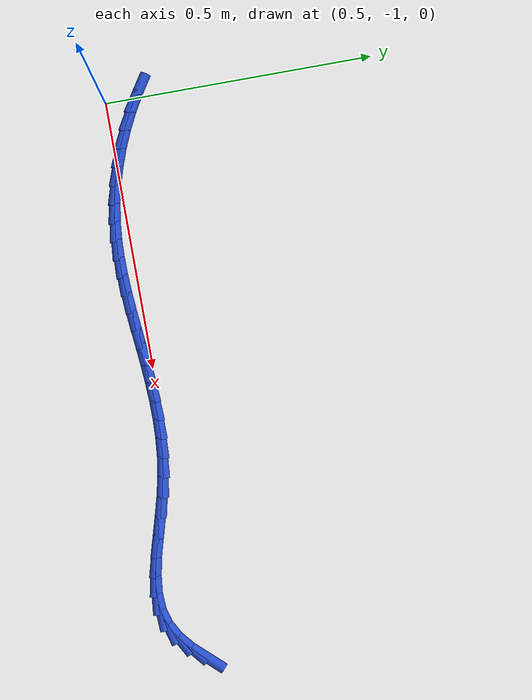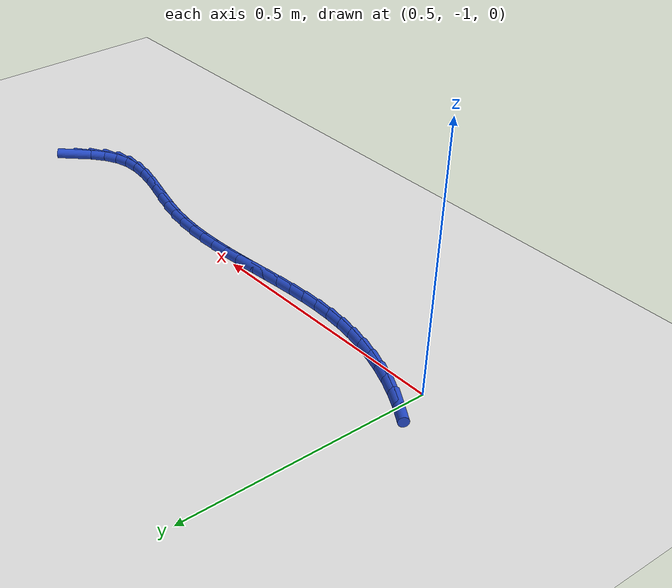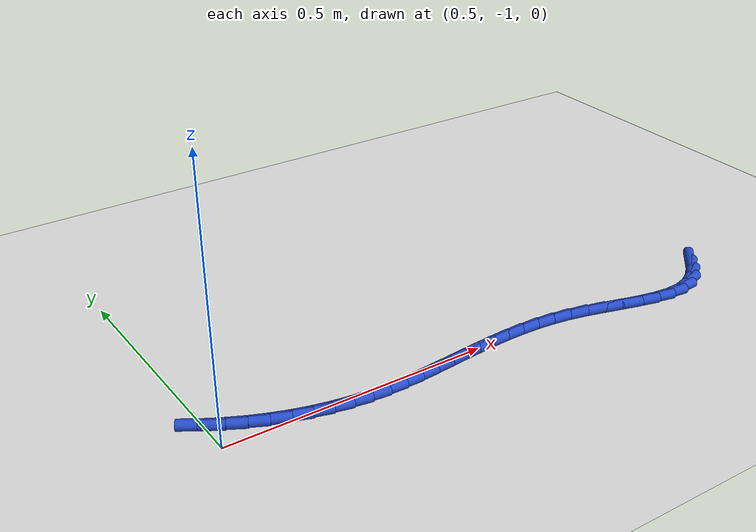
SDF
<sdf version="1.6">
 <world name="default">
  <model name="ground_plane">
   <static>1</static>
   <link name="link">
    <collision name="collision">
     <geometry><plane><normal>0 0 1</normal><size>100 100</size></plane></geometry>
     <surface><friction><ode><mu>100</mu><mu2>50</mu2></ode></friction></surface>
    </collision>
    <visual name="visual">
     <cast_shadows>0</cast_shadows>
     <geometry><plane><normal>0 0 1</normal><size>100 100</size></plane></geometry>
     <material>
      <script><uri>file://media/materials/scripts/gazebo.material</uri><name>Gazebo/WhiteGlow</name></script>
     </material>
    </visual>
   </link>
  </model>
  <model name="line">
   <link name="link_136">
    <pose>1.535851303176339 -0.9959548748062285 0.01 0 1.57 0.8305491064275679</pose>
    <collision name="collision">
     <geometry><cylinder><radius>0.01</radius><length>0.08</length></cylinder></geometry>
    </collision>
    <visual name="visual">
     <material>
      <script><name>Gazebo/Blue</name><uri>file://media/materials/scripts/gazebo.material</uri></script>
     </material>
     <geometry><cylinder><radius>0.01</radius><length>0.08</length></cylinder></geometry>
    </visual>
   </link>
   <link name="link_137">
    <pose>1.5136565148035939 -1.0202501614662336 0.01 0 1.57 0.6956574521396309</pose>
    <collision name="collision">
     <geometry><cylinder><radius>0.01</radius><length>0.08</length></cylinder></geometry>
    </collision>
    <visual name="visual">
     <material>
      <script><name>Gazebo/Blue</name><uri>file://media/materials/scripts/gazebo.material</uri></script>
     </material>
     <geometry><cylinder><radius>0.01</radius><length>0.08</length></cylinder></geometry>
    </visual>
   </link>
   <link name="link_138">
    <pose>1.489957383802396 -1.0400363768263534 0.01 0 1.57 0.5069279007569476</pose>
    <collision name="collision">
     <geometry><cylinder><radius>0.01</radius><length>0.08</length></cylinder></geometry>
    </collision>
    <visual name="visual">
     <material>
      <script><name>Gazebo/Blue</name><uri>file://media/materials/scripts/gazebo.material</uri></script>
     </material>
     <geometry><cylinder><radius>0.01</radius><length>0.08</length></cylinder></geometry>
    </visual>
   </link>
   <link name="link_139">
    <pose>1.4643148517030729 -1.05427650360706 0.01 0 1.57 0.26925715210383283</pose>
    <collision name="collision">
     <geometry><cylinder><radius>0.01</radius><length>0.08</length></cylinder></geometry>
    </collision>
    <visual name="visual">
     <material>
      <script><name>Gazebo/Blue</name><uri>file://media/materials/scripts/gazebo.material</uri></script>
     </material>
     <geometry><cylinder><radius>0.01</radius><length>0.08</length></cylinder></geometry>
    </visual>
   </link>
   <link name="link_140">
    <pose>1.4363146456041511 -1.062003399986366 0.01 0 1.57 0.04858545113335648</pose>
    <collision name="collision">
     <geometry><cylinder><radius>0.01</radius><length>0.08</length></cylinder></geometry>
    </collision>
    <visual name="visual">
     <material>
      <script><name>Gazebo/Blue</name><uri>file://media/materials/scripts/gazebo.material</uri></script>
     </material>
     <geometry><cylinder><radius>0.01</radius><length>0.08</length></cylinder></geometry>
    </visual>
   </link>
   <link name="link_141">
    <pose>1.4059782699403283 -1.063478467321233 0.01 0 1.57 -0.10697634446345039</pose>
    <collision name="collision">
     <geometry><cylinder><radius>0.01</radius><length>0.08</length></cylinder></geometry>
    </collision>
    <visual name="visual">
     <material>
      <script><name>Gazebo/Blue</name><uri>file://media/materials/scripts/gazebo.material</uri></script>
     </material>
     <geometry><cylinder><radius>0.01</radius><length>0.08</length></cylinder></geometry>
    </visual>
   </link>
   <link name="link_142">
    <pose>1.3736993366397603 -1.0600121521689692 0.01 0 1.57 -0.20592167749720483</pose>
    <collision name="collision">
     <geometry><cylinder><radius>0.01</radius><length>0.08</length></cylinder></geometry>
    </collision>
    <visual name="visual">
     <material>
      <script><name>Gazebo/Blue</name><uri>file://media/materials/scripts/gazebo.material</uri></script>
     </material>
     <geometry><cylinder><radius>0.01</radius><length>0.08</length></cylinder></geometry>
    </visual>
   </link>
   <link name="link_143">
    <pose>1.3398834095604928 -1.0529485959597464 0.01 0 1.57 -0.26053188046902653</pose>
    <collision name="collision">
     <geometry><cylinder><radius>0.01</radius><length>0.08</length></cylinder></geometry>
    </collision>
    <visual name="visual">
     <material>
      <script><name>Gazebo/Blue</name><uri>file://media/materials/scripts/gazebo.material</uri></script>
     </material>
     <geometry><cylinder><radius>0.01</radius><length>0.08</length></cylinder></geometry>
    </visual>
   </link>
   <link name="link_144">
    <pose>1.304936052560571 -1.0436319401237375 0.01 0 1.57 -0.2791615511412537</pose>
    <collision name="collision">
     <geometry><cylinder><radius>0.01</radius><length>0.08</length></cylinder></geometry>
    </collision>
    <visual name="visual">
     <material>
      <script><name>Gazebo/Blue</name><uri>file://media/materials/scripts/gazebo.material</uri></script>
     </material>
     <geometry><cylinder><radius>0.01</radius><length>0.08</length></cylinder></geometry>
    </visual>
   </link>
   <link name="link_145">
    <pose>1.269262829498041 -1.0334063260911144 0.01 0 1.57 -0.2655799661006907</pose>
    <collision name="collision">
     <geometry><cylinder><radius>0.01</radius><length>0.08</length></cylinder></geometry>
    </collision>
    <visual name="visual">
     <material>
      <script><name>Gazebo/Blue</name><uri>file://media/materials/scripts/gazebo.material</uri></script>
     </material>
     <geometry><cylinder><radius>0.01</radius><length>0.08</length></cylinder></geometry>
    </visual>
   </link>
   <link name="link_146">
    <pose>1.2332693042309473 -1.02361589529205 0.01 0 1.57 -0.2196311106858433</pose>
    <collision name="collision">
     <geometry><cylinder><radius>0.01</radius><length>0.08</length></cylinder></geometry>
    </collision>
    <visual name="visual">
     <material>
      <script><name>Gazebo/Blue</name><uri>file://media/materials/scripts/gazebo.material</uri></script>
     </material>
     <geometry><cylinder><radius>0.01</radius><length>0.08</length></cylinder></geometry>
    </visual>
   </link>
   <link name="link_147">
    <pose>1.197359745705114 -1.015599728500691 0.01 0 1.57 -0.15211902058154705</pose>
    <collision name="collision">
     <geometry><cylinder><radius>0.01</radius><length>0.08</length></cylinder></geometry>
    </collision>
    <visual name="visual">
     <material>
      <script><name>Gazebo/Blue</name><uri>file://media/materials/scripts/gazebo.material</uri></script>
     </material>
     <geometry><cylinder><radius>0.01</radius><length>0.08</length></cylinder></geometry>
    </visual>
   </link>
   <link name="link_148">
    <pose>1.1617979667914404 -1.0101479890665508 0.01 0 1.57 -0.08867056926568175</pose>
    <collision name="collision">
     <geometry><cylinder><radius>0.01</radius><length>0.08</length></cylinder></geometry>
    </collision>
    <visual name="visual">
     <material>
      <script><name>Gazebo/Blue</name><uri>file://media/materials/scripts/gazebo.material</uri></script>
     </material>
     <geometry><cylinder><radius>0.01</radius><length>0.08</length></cylinder></geometry>
    </visual>
   </link>
   <link name="link_149">
    <pose>1.1265833137404893 -1.0070172763853196 0.01 0 1.57 -0.03344044274485839</pose>
    <collision name="collision">
     <geometry><cylinder><radius>0.01</radius><length>0.08</length></cylinder></geometry>
    </collision>
    <visual name="visual">
     <material>
      <script><name>Gazebo/Blue</name><uri>file://media/materials/scripts/gazebo.material</uri></script>
     </material>
     <geometry><cylinder><radius>0.01</radius><length>0.08</length></cylinder></geometry>
    </visual>
   </link>
   <link name="link_150">
    <pose>1.091685877109146 -1.0058498554599709 0.01 0 1.57 0.012658503035554252</pose>
    <collision name="collision">
     <geometry><cylinder><radius>0.01</radius><length>0.08</length></cylinder></geometry>
    </collision>
    <visual name="visual">
     <material>
      <script><name>Gazebo/Blue</name><uri>file://media/materials/scripts/gazebo.material</uri></script>
     </material>
     <geometry><cylinder><radius>0.01</radius><length>0.08</length></cylinder></geometry>
    </visual>
   </link>
   <link name="link_151">
    <pose>1.0570757474542933 -1.006287991293477 0.01 0 1.57 0.04903848474812003</pose>
    <collision name="collision">
     <geometry><cylinder><radius>0.01</radius><length>0.08</length></cylinder></geometry>
    </collision>
    <visual name="visual">
     <material>
      <script><name>Gazebo/Blue</name><uri>file://media/materials/scripts/gazebo.material</uri></script>
     </material>
     <geometry><cylinder><radius>0.01</radius><length>0.08</length></cylinder></geometry>
    </visual>
   </link>
   <link name="link_152">
    <pose>1.0227230153328166 -1.0079739488888109 0.01 0 1.57 0.07534504030448894</pose>
    <collision name="collision">
     <geometry><cylinder><radius>0.01</radius><length>0.08</length></cylinder></geometry>
    </collision>
    <visual name="visual">
     <material>
      <script><name>Gazebo/Blue</name><uri>file://media/materials/scripts/gazebo.material</uri></script>
     </material>
     <geometry><cylinder><radius>0.01</radius><length>0.08</length></cylinder></geometry>
    </visual>
   </link>
   <link name="link_153">
    <pose>0.9885977713015996 -1.010549993248945 0.01 0 1.57 0.09136327023422125</pose>
    <collision name="collision">
     <geometry><cylinder><radius>0.01</radius><length>0.08</length></cylinder></geometry>
    </collision>
    <visual name="visual">
     <material>
      <script><name>Gazebo/Blue</name><uri>file://media/materials/scripts/gazebo.material</uri></script>
     </material>
     <geometry><cylinder><radius>0.01</radius><length>0.08</length></cylinder></geometry>
    </visual>
   </link>
   <link name="link_154">
    <pose>0.9546701059175273 -1.0136583893768527 0.01 0 1.57 0.09694083985118888</pose>
    <collision name="collision">
     <geometry><cylinder><radius>0.01</radius><length>0.08</length></cylinder></geometry>
    </collision>
    <visual name="visual">
     <material>
      <script><name>Gazebo/Blue</name><uri>file://media/materials/scripts/gazebo.material</uri></script>
     </material>
     <geometry><cylinder><radius>0.01</radius><length>0.08</length></cylinder></geometry>
    </visual>
   </link>
   <link name="link_155">
    <pose>0.9209101097374831 -1.0169414022755066 0.01 0 1.57 0.0919378380045134</pose>
    <collision name="collision">
     <geometry><cylinder><radius>0.01</radius><length>0.08</length></cylinder></geometry>
    </collision>
    <visual name="visual">
     <material>
      <script><name>Gazebo/Blue</name><uri>file://media/materials/scripts/gazebo.material</uri></script>
     </material>
     <geometry><cylinder><radius>0.01</radius><length>0.08</length></cylinder></geometry>
    </visual>
   </link>
   <link name="link_156">
    <pose>0.8872878733183518 -1.020041296947879 0.01 0 1.57 0.07620862953283646</pose>
    <collision name="collision">
     <geometry><cylinder><radius>0.01</radius><length>0.08</length></cylinder></geometry>
    </collision>
    <visual name="visual">
     <material>
      <script><name>Gazebo/Blue</name><uri>file://media/materials/scripts/gazebo.material</uri></script>
     </material>
     <geometry><cylinder><radius>0.01</radius><length>0.08</length></cylinder></geometry>
    </visual>
   </link>
   <link name="link_157">
    <pose>0.8537734872170174 -1.022600338396943 0.01 0 1.57 0.04961921873363612</pose>
    <collision name="collision">
     <geometry><cylinder><radius>0.01</radius><length>0.08</length></cylinder></geometry>
    </collision>
    <visual name="visual">
     <material>
      <script><name>Gazebo/Blue</name><uri>file://media/materials/scripts/gazebo.material</uri></script>
     </material>
     <geometry><cylinder><radius>0.01</radius><length>0.08</length></cylinder></geometry>
    </visual>
   </link>
   <link name="link_158">
    <pose>0.8203370419903643 -1.0242607916256719 0.01 0 1.57 0.012103308649943578</pose>
    <collision name="collision">
     <geometry><cylinder><radius>0.01</radius><length>0.08</length></cylinder></geometry>
    </collision>
    <visual name="visual">
     <material>
      <script><name>Gazebo/Blue</name><uri>file://media/materials/scripts/gazebo.material</uri></script>
     </material>
     <geometry><cylinder><radius>0.01</radius><length>0.08</length></cylinder></geometry>
    </visual>
   </link>
   <link name="link_159">
    <pose>0.786948628195277 -1.0246649216370378 0.01 0 1.57 -0.036241769491052615</pose>
    <collision name="collision">
     <geometry><cylinder><radius>0.01</radius><length>0.08</length></cylinder></geometry>
    </collision>
    <visual name="visual">
     <material>
      <script><name>Gazebo/Blue</name><uri>file://media/materials/scripts/gazebo.material</uri></script>
     </material>
     <geometry><cylinder><radius>0.01</radius><length>0.08</length></cylinder></geometry>
    </visual>
   </link>
   <link name="link_160">
    <pose>0.7535783363886391 -1.0234549934340134 0.01 0 1.57 -0.09502520380986722</pose>
    <collision name="collision">
     <geometry><cylinder><radius>0.01</radius><length>0.08</length></cylinder></geometry>
    </collision>
    <visual name="visual">
     <material>
      <script><name>Gazebo/Blue</name><uri>file://media/materials/scripts/gazebo.material</uri></script>
     </material>
     <geometry><cylinder><radius>0.01</radius><length>0.08</length></cylinder></geometry>
    </visual>
   </link>
   <link name="link_161">
    <pose>0.7201962571277393 -1.0202732720205587 0.01 0 1.57 -0.16132567689967953</pose>
    <collision name="collision">
     <geometry><cylinder><radius>0.01</radius><length>0.08</length></cylinder></geometry>
    </collision>
    <visual name="visual">
     <material>
      <script><name>Gazebo/Blue</name><uri>file://media/materials/scripts/gazebo.material</uri></script>
     </material>
     <geometry><cylinder><radius>0.01</radius><length>0.08</length></cylinder></geometry>
    </visual>
   </link>
   <link name="link_162">
    <pose>0.6868039791226213 -1.0148390142162425 0.01 0 1.57 -0.22630528875322473</pose>
    <collision name="collision">
     <geometry><cylinder><radius>0.01</radius><length>0.08</length></cylinder></geometry>
    </collision>
    <visual name="visual">
     <material>
      <script><name>Gazebo/Blue</name><uri>file://media/materials/scripts/gazebo.material</uri></script>
     </material>
     <geometry><cylinder><radius>0.01</radius><length>0.08</length></cylinder></geometry>
    </visual>
   </link>
   <link name="link_163">
    <pose>0.6535282001943409 -1.007177284539284 0.01 0 1.57 -0.2883337583572622</pose>
    <collision name="collision">
     <geometry><cylinder><radius>0.01</radius><length>0.08</length></cylinder></geometry>
    </collision>
    <visual name="visual">
     <material>
      <script><name>Gazebo/Blue</name><uri>file://media/materials/scripts/gazebo.material</uri></script>
     </material>
     <geometry><cylinder><radius>0.01</radius><length>0.08</length></cylinder></geometry>
    </visual>
   </link>
   <link name="link_164">
    <pose>0.6205266761133574 -0.9973890633221468 0.01 0 1.57 -0.34796463780884357</pose>
    <collision name="collision">
     <geometry><cylinder><radius>0.01</radius><length>0.08</length></cylinder></geometry>
    </collision>
    <visual name="visual">
     <material>
      <script><name>Gazebo/Blue</name><uri>file://media/materials/scripts/gazebo.material</uri></script>
     </material>
     <geometry><cylinder><radius>0.01</radius><length>0.08</length></cylinder></geometry>
    </visual>
   </link>
   <link name="link_165">
    <pose>0.5879571626501291 -0.9855753308972934 0.01 0 1.57 -0.4057541970257926</pose>
    <collision name="collision">
     <geometry><cylinder><radius>0.01</radius><length>0.08</length></cylinder></geometry>
    </collision>
    <visual name="visual">
     <material>
      <script><name>Gazebo/Blue</name><uri>file://media/materials/scripts/gazebo.material</uri></script>
     </material>
     <geometry><cylinder><radius>0.01</radius><length>0.08</length></cylinder></geometry>
    </visual>
   </link>
   <link name="link_166">
    <pose>0.5559774155751154 -0.9718370675971877 0.01 0 1.57 -0.4622558063524298</pose>
    <collision name="collision">
     <geometry><cylinder><radius>0.01</radius><length>0.08</length></cylinder></geometry>
    </collision>
    <visual name="visual">
     <material>
      <script><name>Gazebo/Blue</name><uri>file://media/materials/scripts/gazebo.material</uri></script>
     </material>
     <geometry><cylinder><radius>0.01</radius><length>0.08</length></cylinder></geometry>
    </visual>
   </link>
   <link name="link_167">
    <pose>0.5247451906587755 -0.9562752537542919 0.01 0 1.57 -0.5180193553257993</pose>
    <collision name="collision">
     <geometry><cylinder><radius>0.01</radius><length>0.08</length></cylinder></geometry>
    </collision>
    <visual name="visual">
     <material>
      <script><name>Gazebo/Blue</name><uri>file://media/materials/scripts/gazebo.material</uri></script>
     </material>
     <geometry><cylinder><radius>0.01</radius><length>0.08</length></cylinder></geometry>
    </visual>
   </link>
   <link name="link_168">
    <pose>0.49441824367156667 -0.9389908697010687 0.01 0 1.57 -0.5735939539126189</pose>
    <collision name="collision">
     <geometry><cylinder><radius>0.01</radius><length>0.08</length></cylinder></geometry>
    </collision>
    <visual name="visual">
     <material>
      <script><name>Gazebo/Blue</name><uri>file://media/materials/scripts/gazebo.material</uri></script>
     </material>
     <geometry><cylinder><radius>0.01</radius><length>0.08</length></cylinder></geometry>
    </visual>
   </link>
  </model>
 </world>
</sdf>
